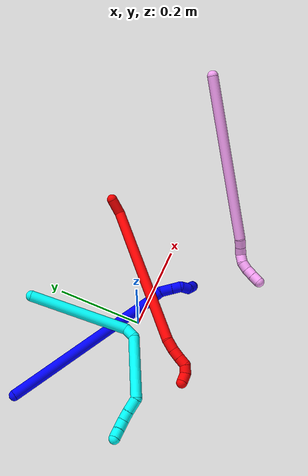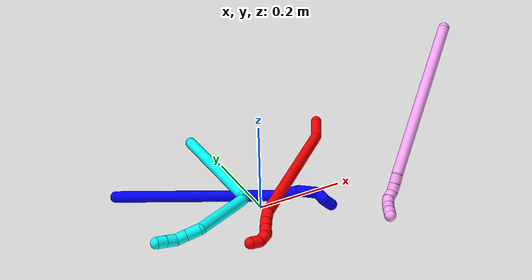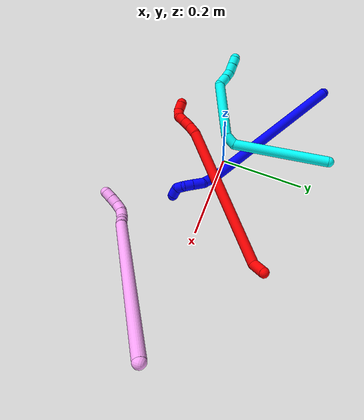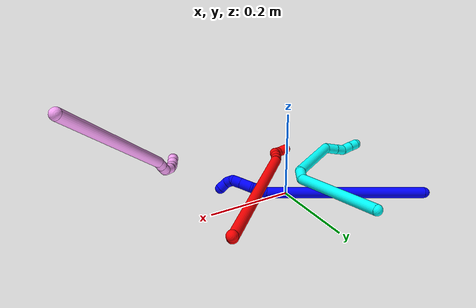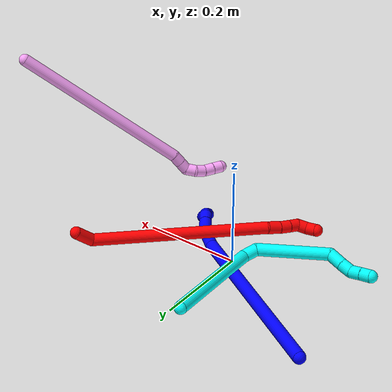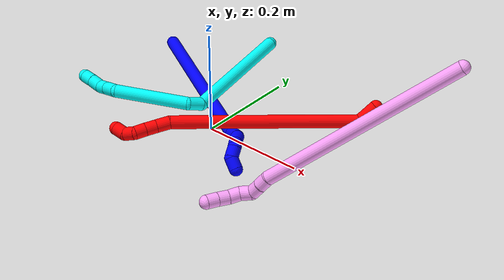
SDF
<sdf version="1.7">
 <world name="default">
  <plugin name="TubeGeneratorPlugin" filename="libtube_generator_plugin.so"/>
  <model name="photoneo_s_sensor">
   <static>1</static>
   <pose>0 0 2 1.57079 1.57079 3.14159</pose>
   <link name="link">
    <inertial><mass>0.1</mass></inertial>
    <sensor name="sensor" type="depth">
     <update_rate>30</update_rate>
     <camera>
      <horizontal_fov>1.22</horizontal_fov>
      <image><width>1920</width><height>1200</height><format>B8G8R8</format></image>
      <clip><near>0.1</near><far>4</far></clip>
      <depth_camera><output>points</output></depth_camera>
     </camera>
     <plugin name="camera_plugin" filename="libgazebo_ros_depth_camera.so">
      <baseline>0.2</baseline>
      <alwaysOn>1</alwaysOn>
      <updateRate>0.0</updateRate>
      <cameraName>camera_ir</cameraName>
      <imageTopicName>/camera/color/image_raw</imageTopicName>
      <cameraInfoTopicName>/camera/color/camera_info</cameraInfoTopicName>
      <depthImageTopicName>/camera/depth/image_raw</depthImageTopicName>
      <depthImageCameraInfoTopicName>/camera/depth/camera_info</depthImageCameraInfoTopicName>
      <pointCloudTopicName>/camera/depth/points</pointCloudTopicName>
      <frameName>fr_optical</frameName>
      <pointCloudCutoff>0.1</pointCloudCutoff>
      <pointCloudCutoffMax>2.0</pointCloudCutoffMax>
      <distortionK1>0</distortionK1>
      <distortionK2>0</distortionK2>
      <distortionK3>0</distortionK3>
      <distortionT1>0</distortionT1>
      <distortionT2>0</distortionT2>
      <CxPrime>0</CxPrime>
      <Cx>0</Cx>
      <Cy>0</Cy>
      <focalLength>0</focalLength>
      <hackBaseline>0</hackBaseline>
     </plugin>
    </sensor>
   </link>
  </model>
  <gravity>0 0 -9.8</gravity>
  <magnetic_field>6e-06 2.3e-05 -4.2e-05</magnetic_field>
  <atmosphere type="adiabatic"/>
  <physics name="default_physics" default="0" type="ode">
   <max_step_size>0.003</max_step_size>
   <real_time_factor>1</real_time_factor>
   <real_time_update_rate>1000</real_time_update_rate>
   <max_contacts>10000</max_contacts>
   <ode>
    <solver>
     <type>quick</type>
     <iters>100</iters>
     <sor>1.3</sor>
     <use_dynamic_moi_rescaling>0</use_dynamic_moi_rescaling>
    </solver>
    <constraints>
     <contact_max_correcting_vel>0</contact_max_correcting_vel>
     <contact_surface_layer>0.001</contact_surface_layer>
     <cfm>0</cfm>
     <erp>0.2</erp>
    </constraints>
   </ode>
  </physics>
  <scene><ambient>0.4 0.4 0.4 1</ambient><background>0.7 0.7 0.7 1</background><shadows>0</shadows></scene>
  <audio><device>default</device></audio>
  <spherical_coordinates>
   <surface_model>EARTH_WGS84</surface_model>
   <latitude_deg>0</latitude_deg>
   <longitude_deg>0</longitude_deg>
   <elevation>0</elevation>
   <heading_deg>0</heading_deg>
  </spherical_coordinates>
  <model name="bin">
   <static>1</static>
   <link name="bottom">
    <collision name="collision-bottom">
     <pose>0 0 -0.01 0 -0 0</pose>
     <geometry><box><size>0.8 0.6 0.02</size></box></geometry>
     <surface>
      <friction><ode><mu>100</mu><mu2>100</mu2></ode></friction>
      <contact><collide_bitmask>65535</collide_bitmask></contact>
     </surface>
    </collision>
   </link>
   <link name="west_wall">
    <collision name="collision-west_wall">
     <pose>-0.41 0 0.1 0 -0 0</pose>
     <geometry><box><size>0.02 0.6 0.2</size></box></geometry>
     <surface>
      <friction><ode><mu>100</mu><mu2>100</mu2></ode></friction>
      <contact><collide_bitmask>65535</collide_bitmask></contact>
     </surface>
    </collision>
   </link>
   <link name="east_wall">
    <collision name="collision-east_wall">
     <pose>0.41 0 0.1 0 -0 0</pose>
     <geometry><box><size>0.02 0.6 0.2</size></box></geometry>
     <surface>
      <friction><ode><mu>100</mu><mu2>100</mu2></ode></friction>
      <contact><collide_bitmask>65535</collide_bitmask></contact>
     </surface>
    </collision>
   </link>
   <link name="south_wall">
    <collision name="collision-south_wall">
     <pose>0 -0.31 0.1 0 -0 0</pose>
     <geometry><box><size>0.8 0.02 0.2</size></box></geometry>
     <surface>
      <friction><ode><mu>100</mu><mu2>100</mu2></ode></friction>
      <contact><collide_bitmask>65535</collide_bitmask></contact>
     </surface>
    </collision>
   </link>
   <link name="north_wall">
    <collision name="collision-north_wall">
     <pose>0 0.31 0.1 0 -0 0</pose>
     <geometry><box><size>0.8 0.02 0.2</size></box></geometry>
     <surface>
      <friction><ode><mu>100</mu><mu2>100</mu2></ode></friction>
      <contact><collide_bitmask>65535</collide_bitmask></contact>
     </surface>
    </collision>
   </link>
  </model>
  <model name="1">
   <static>0</static>
   <link name="1">
    <collision name="collision-cylinder-e_1_1_4">
     <pose>0.044503 -0.016224 -0.179588 3.0515 0.241964 2.43144</pose>
     <geometry><cylinder><radius>0.0125</radius><length>0.371461</length></cylinder></geometry>
     <surface>
      <friction><ode><mu>1.16</mu><mu2>1.16</mu2><slip1>0</slip1><slip2>0</slip2></ode></friction>
      <contact><ode><kp>1e+06</kp><kd>1</kd><max_vel>0</max_vel><min_depth>0.001</min_depth></ode></contact>
     </surface>
    </collision>
    <visual name="visual-cylinder-e_1_1_4">
     <pose>0.044503 -0.016224 -0.179588 3.0515 0.241964 2.43144</pose>
     <geometry><cylinder><radius>0.0125</radius><length>0.371461</length></cylinder></geometry>
     <material><ambient>0 0 1 1</ambient></material>
    </visual>
    <collision name="collision-cylinder-e_2_4_5">
     <pose>0.096438 -0.028406 -0.375429 -2.89778 0.417668 -2.09325</pose>
     <geometry><cylinder><radius>0.0125</radius><length>0.036644</length></cylinder></geometry>
     <surface>
      <friction><ode><mu>1.16</mu><mu2>1.16</mu2><slip1>0</slip1><slip2>0</slip2></ode></friction>
      <contact><ode><kp>1e+06</kp><kd>1</kd><max_vel>0</max_vel><min_depth>0.001</min_depth></ode></contact>
     </surface>
    </collision>
    <visual name="visual-cylinder-e_2_4_5">
     <pose>0.096438 -0.028406 -0.375429 -2.89778 0.417668 -2.09325</pose>
     <geometry><cylinder><radius>0.0125</radius><length>0.036644</length></cylinder></geometry>
     <material><ambient>0 0 1 1</ambient></material>
    </visual>
    <collision name="collision-cylinder-e_3_5_6">
     <pose>0.11304 -0.025903 -0.402023 2.99375 0.719911 2.75302</pose>
     <geometry><cylinder><radius>0.0125</radius><length>0.027816</length></cylinder></geometry>
     <surface>
      <friction><ode><mu>1.16</mu><mu2>1.16</mu2><slip1>0</slip1><slip2>0</slip2></ode></friction>
      <contact><ode><kp>1e+06</kp><kd>1</kd><max_vel>0</max_vel><min_depth>0.001</min_depth></ode></contact>
     </surface>
    </collision>
    <visual name="visual-cylinder-e_3_5_6">
     <pose>0.11304 -0.025903 -0.402023 2.99375 0.719911 2.75302</pose>
     <geometry><cylinder><radius>0.0125</radius><length>0.027816</length></cylinder></geometry>
     <material><ambient>0 0 1 1</ambient></material>
    </visual>
    <collision name="collision-cylinder-e_4_6_7">
     <pose>0.128947 -0.028731 -0.420301 2.98079 0.697555 2.70547</pose>
     <geometry><cylinder><radius>0.0125</radius><length>0.020978</length></cylinder></geometry>
     <surface>
      <friction><ode><mu>1.16</mu><mu2>1.16</mu2><slip1>0</slip1><slip2>0</slip2></ode></friction>
      <contact><ode><kp>1e+06</kp><kd>1</kd><max_vel>0</max_vel><min_depth>0.001</min_depth></ode></contact>
     </surface>
    </collision>
    <visual name="visual-cylinder-e_4_6_7">
     <pose>0.128947 -0.028731 -0.420301 2.98079 0.697555 2.70547</pose>
     <geometry><cylinder><radius>0.0125</radius><length>0.020978</length></cylinder></geometry>
     <material><ambient>0 0 1 1</ambient></material>
    </visual>
    <collision name="collision-cylinder-e_5_7_8">
     <pose>0.139732 -0.03799 -0.433742 2.17516 0.395759 0.730003</pose>
     <geometry><cylinder><radius>0.0125</radius><length>0.020998</length></cylinder></geometry>
     <surface>
      <friction><ode><mu>1.16</mu><mu2>1.16</mu2><slip1>0</slip1><slip2>0</slip2></ode></friction>
      <contact><ode><kp>1e+06</kp><kd>1</kd><max_vel>0</max_vel><min_depth>0.001</min_depth></ode></contact>
     </surface>
    </collision>
    <visual name="visual-cylinder-e_5_7_8">
     <pose>0.139732 -0.03799 -0.433742 2.17516 0.395759 0.730003</pose>
     <geometry><cylinder><radius>0.0125</radius><length>0.020998</length></cylinder></geometry>
     <material><ambient>0 0 1 1</ambient></material>
    </visual>
    <collision name="collision-cylinder-e_6_8_2">
     <pose>0.141047 -0.05273 -0.447544 2.45732 -0.249869 -0.678044</pose>
     <geometry><cylinder><radius>0.0125</radius><length>0.022102</length></cylinder></geometry>
     <surface>
      <friction><ode><mu>1.16</mu><mu2>1.16</mu2><slip1>0</slip1><slip2>0</slip2></ode></friction>
      <contact><ode><kp>1e+06</kp><kd>1</kd><max_vel>0</max_vel><min_depth>0.001</min_depth></ode></contact>
     </surface>
    </collision>
    <visual name="visual-cylinder-e_6_8_2">
     <pose>0.141047 -0.05273 -0.447544 2.45732 -0.249869 -0.678044</pose>
     <geometry><cylinder><radius>0.0125</radius><length>0.022102</length></cylinder></geometry>
     <material><ambient>0 0 1 1</ambient></material>
    </visual>
    <collision name="collision-sphere-2">
     <pose>0.138314 -0.059499 -0.455841 0 -0 0</pose>
     <geometry><sphere><radius>0.0125</radius></sphere></geometry>
     <surface>
      <friction><ode><mu>1.16</mu><mu2>1.16</mu2><slip1>0</slip1><slip2>0</slip2></ode></friction>
      <contact><ode><kp>1e+06</kp><kd>1</kd><max_vel>0</max_vel><min_depth>0.001</min_depth></ode></contact>
     </surface>
    </collision>
    <visual name="visual-sphere-2">
     <pose>0.138314 -0.059499 -0.455841 0 -0 0</pose>
     <geometry><sphere><radius>0.0125</radius></sphere></geometry>
     <material><ambient>0 0 1 1</ambient></material>
    </visual>
    <collision name="collision-sphere-4">
     <pose>0.089006 -0.032449 -0.359177 0 -0 0</pose>
     <geometry><sphere><radius>0.0125</radius></sphere></geometry>
     <surface>
      <friction><ode><mu>1.16</mu><mu2>1.16</mu2><slip1>0</slip1><slip2>0</slip2></ode></friction>
      <contact><ode><kp>1e+06</kp><kd>1</kd><max_vel>0</max_vel><min_depth>0.001</min_depth></ode></contact>
     </surface>
    </collision>
    <visual name="visual-sphere-4">
     <pose>0.089006 -0.032449 -0.359177 0 -0 0</pose>
     <geometry><sphere><radius>0.0125</radius></sphere></geometry>
     <material><ambient>0 0 1 1</ambient></material>
    </visual>
    <collision name="collision-sphere-1">
     <geometry><sphere><radius>0.0125</radius></sphere></geometry>
     <surface>
      <friction><ode><mu>1.16</mu><mu2>1.16</mu2><slip1>0</slip1><slip2>0</slip2></ode></friction>
      <contact><ode><kp>1e+06</kp><kd>1</kd><max_vel>0</max_vel><min_depth>0.001</min_depth></ode></contact>
     </surface>
    </collision>
    <visual name="visual-sphere-1">
     <geometry><sphere><radius>0.0125</radius></sphere></geometry>
     <material><ambient>0 0 1 1</ambient></material>
    </visual>
    <collision name="collision-sphere-8">
     <pose>0.14378 -0.045961 -0.439247 0 -0 0</pose>
     <geometry><sphere><radius>0.0125</radius></sphere></geometry>
     <surface>
      <friction><ode><mu>1.16</mu><mu2>1.16</mu2><slip1>0</slip1><slip2>0</slip2></ode></friction>
      <contact><ode><kp>1e+06</kp><kd>1</kd><max_vel>0</max_vel><min_depth>0.001</min_depth></ode></contact>
     </surface>
    </collision>
    <visual name="visual-sphere-8">
     <pose>0.14378 -0.045961 -0.439247 0 -0 0</pose>
     <geometry><sphere><radius>0.0125</radius></sphere></geometry>
     <material><ambient>0 0 1 1</ambient></material>
    </visual>
    <collision name="collision-sphere-5">
     <pose>0.10387 -0.024363 -0.39168 0 -0 0</pose>
     <geometry><sphere><radius>0.0125</radius></sphere></geometry>
     <surface>
      <friction><ode><mu>1.16</mu><mu2>1.16</mu2><slip1>0</slip1><slip2>0</slip2></ode></friction>
      <contact><ode><kp>1e+06</kp><kd>1</kd><max_vel>0</max_vel><min_depth>0.001</min_depth></ode></contact>
     </surface>
    </collision>
    <visual name="visual-sphere-5">
     <pose>0.10387 -0.024363 -0.39168 0 -0 0</pose>
     <geometry><sphere><radius>0.0125</radius></sphere></geometry>
     <material><ambient>0 0 1 1</ambient></material>
    </visual>
    <collision name="collision-sphere-6">
     <pose>0.122209 -0.027444 -0.412366 0 -0 0</pose>
     <geometry><sphere><radius>0.0125</radius></sphere></geometry>
     <surface>
      <friction><ode><mu>1.16</mu><mu2>1.16</mu2><slip1>0</slip1><slip2>0</slip2></ode></friction>
      <contact><ode><kp>1e+06</kp><kd>1</kd><max_vel>0</max_vel><min_depth>0.001</min_depth></ode></contact>
     </surface>
    </collision>
    <visual name="visual-sphere-6">
     <pose>0.122209 -0.027444 -0.412366 0 -0 0</pose>
     <geometry><sphere><radius>0.0125</radius></sphere></geometry>
     <material><ambient>0 0 1 1</ambient></material>
    </visual>
    <collision name="collision-sphere-7">
     <pose>0.135685 -0.030018 -0.428237 0 -0 0</pose>
     <geometry><sphere><radius>0.0125</radius></sphere></geometry>
     <surface>
      <friction><ode><mu>1.16</mu><mu2>1.16</mu2><slip1>0</slip1><slip2>0</slip2></ode></friction>
      <contact><ode><kp>1e+06</kp><kd>1</kd><max_vel>0</max_vel><min_depth>0.001</min_depth></ode></contact>
     </surface>
    </collision>
    <visual name="visual-sphere-7">
     <pose>0.135685 -0.030018 -0.428237 0 -0 0</pose>
     <geometry><sphere><radius>0.0125</radius></sphere></geometry>
     <material><ambient>0 0 1 1</ambient></material>
    </visual>
    <inertial>
     <pose>0.063932 -0.020708 -0.238934 0 -0 0</pose>
     <mass>0.5</mass>
     <inertia>
      <ixx>-0.000438</ixx>
      <ixy>0</ixy>
      <ixz>0</ixz>
      <iyy>0.006008</iyy>
      <iyz>0</iyz>
      <izz>-0.000692</izz>
     </inertia>
    </inertial>
   </link>
   <pose>-0.268916 0.180534 0.011496 1.55214 -0.456858 -1.8233</pose>
  </model>
  <model name="2">
   <static>0</static>
   <link name="2">
    <collision name="collision-cylinder-e_1_1_4">
     <pose>0.003649 -0.003506 -0.01925 2.96145 0.184367 1.59413</pose>
     <geometry><cylinder><radius>0.0125</radius><length>0.039808</length></cylinder></geometry>
     <surface>
      <friction><ode><mu>1.16</mu><mu2>1.16</mu2><slip1>0</slip1><slip2>0</slip2></ode></friction>
      <contact><ode><kp>1e+06</kp><kd>1</kd><max_vel>0</max_vel><min_depth>0.001</min_depth></ode></contact>
     </surface>
    </collision>
    <visual name="visual-cylinder-e_1_1_4">
     <pose>0.003649 -0.003506 -0.01925 2.96145 0.184367 1.59413</pose>
     <geometry><cylinder><radius>0.0125</radius><length>0.039808</length></cylinder></geometry>
     <material><ambient>1 0 0 1</ambient></material>
    </visual>
    <collision name="collision-cylinder-e_2_4_5">
     <pose>-0.083479 -0.051528 -0.181046 2.83889 -0.546187 -2.14433</pose>
     <geometry><cylinder><radius>0.0125</radius><length>0.349522</length></cylinder></geometry>
     <surface>
      <friction><ode><mu>1.16</mu><mu2>1.16</mu2><slip1>0</slip1><slip2>0</slip2></ode></friction>
      <contact><ode><kp>1e+06</kp><kd>1</kd><max_vel>0</max_vel><min_depth>0.001</min_depth></ode></contact>
     </surface>
    </collision>
    <visual name="visual-cylinder-e_2_4_5">
     <pose>-0.083479 -0.051528 -0.181046 2.83889 -0.546187 -2.14433</pose>
     <geometry><cylinder><radius>0.0125</radius><length>0.349522</length></cylinder></geometry>
     <material><ambient>1 0 0 1</ambient></material>
    </visual>
    <collision name="collision-cylinder-e_3_5_6">
     <pose>-0.177728 -0.100541 -0.335232 2.77302 -0.271378 -1.26433</pose>
     <geometry><cylinder><radius>0.0125</radius><length>0.025905</length></cylinder></geometry>
     <surface>
      <friction><ode><mu>1.16</mu><mu2>1.16</mu2><slip1>0</slip1><slip2>0</slip2></ode></friction>
      <contact><ode><kp>1e+06</kp><kd>1</kd><max_vel>0</max_vel><min_depth>0.001</min_depth></ode></contact>
     </surface>
    </collision>
    <visual name="visual-cylinder-e_3_5_6">
     <pose>-0.177728 -0.100541 -0.335232 2.77302 -0.271378 -1.26433</pose>
     <geometry><cylinder><radius>0.0125</radius><length>0.025905</length></cylinder></geometry>
     <material><ambient>1 0 0 1</ambient></material>
    </visual>
    <collision name="collision-cylinder-e_4_6_7">
     <pose>-0.184008 -0.110051 -0.356035 2.64088 -0.262638 -0.953514</pose>
     <geometry><cylinder><radius>0.0125</radius><length>0.021631</length></cylinder></geometry>
     <surface>
      <friction><ode><mu>1.16</mu><mu2>1.16</mu2><slip1>0</slip1><slip2>0</slip2></ode></friction>
      <contact><ode><kp>1e+06</kp><kd>1</kd><max_vel>0</max_vel><min_depth>0.001</min_depth></ode></contact>
     </surface>
    </collision>
    <visual name="visual-cylinder-e_4_6_7">
     <pose>-0.184008 -0.110051 -0.356035 2.64088 -0.262638 -0.953514</pose>
     <geometry><cylinder><radius>0.0125</radius><length>0.021631</length></cylinder></geometry>
     <material><ambient>1 0 0 1</ambient></material>
    </visual>
    <collision name="collision-cylinder-e_5_7_8">
     <pose>-0.189173 -0.120252 -0.373744 2.59611 -0.231511 -0.787925</pose>
     <geometry><cylinder><radius>0.0125</radius><length>0.020542</length></cylinder></geometry>
     <surface>
      <friction><ode><mu>1.16</mu><mu2>1.16</mu2><slip1>0</slip1><slip2>0</slip2></ode></friction>
      <contact><ode><kp>1e+06</kp><kd>1</kd><max_vel>0</max_vel><min_depth>0.001</min_depth></ode></contact>
     </surface>
    </collision>
    <visual name="visual-cylinder-e_5_7_8">
     <pose>-0.189173 -0.120252 -0.373744 2.59611 -0.231511 -0.787925</pose>
     <geometry><cylinder><radius>0.0125</radius><length>0.020542</length></cylinder></geometry>
     <material><ambient>1 0 0 1</ambient></material>
    </visual>
    <collision name="collision-cylinder-e_6_8_9">
     <pose>-0.195437 -0.124203 -0.391449 -3.00753 -0.400008 2.50201</pose>
     <geometry><cylinder><radius>0.0125</radius><length>0.020069</length></cylinder></geometry>
     <surface>
      <friction><ode><mu>1.16</mu><mu2>1.16</mu2><slip1>0</slip1><slip2>0</slip2></ode></friction>
      <contact><ode><kp>1e+06</kp><kd>1</kd><max_vel>0</max_vel><min_depth>0.001</min_depth></ode></contact>
     </surface>
    </collision>
    <visual name="visual-cylinder-e_6_8_9">
     <pose>-0.195437 -0.124203 -0.391449 -3.00753 -0.400008 2.50201</pose>
     <geometry><cylinder><radius>0.0125</radius><length>0.020069</length></cylinder></geometry>
     <material><ambient>1 0 0 1</ambient></material>
    </visual>
    <collision name="collision-cylinder-e_7_9_2">
     <pose>-0.207997 -0.119 -0.406625 -2.55855 -0.876241 2.00225</pose>
     <geometry><cylinder><radius>0.0125</radius><length>0.022523</length></cylinder></geometry>
     <surface>
      <friction><ode><mu>1.16</mu><mu2>1.16</mu2><slip1>0</slip1><slip2>0</slip2></ode></friction>
      <contact><ode><kp>1e+06</kp><kd>1</kd><max_vel>0</max_vel><min_depth>0.001</min_depth></ode></contact>
     </surface>
    </collision>
    <visual name="visual-cylinder-e_7_9_2">
     <pose>-0.207997 -0.119 -0.406625 -2.55855 -0.876241 2.00225</pose>
     <geometry><cylinder><radius>0.0125</radius><length>0.022523</length></cylinder></geometry>
     <material><ambient>1 0 0 1</ambient></material>
    </visual>
    <collision name="collision-sphere-2">
     <pose>-0.21665 -0.115031 -0.412642 0 -0 0</pose>
     <geometry><sphere><radius>0.0125</radius></sphere></geometry>
     <surface>
      <friction><ode><mu>1.16</mu><mu2>1.16</mu2><slip1>0</slip1><slip2>0</slip2></ode></friction>
      <contact><ode><kp>1e+06</kp><kd>1</kd><max_vel>0</max_vel><min_depth>0.001</min_depth></ode></contact>
     </surface>
    </collision>
    <visual name="visual-sphere-2">
     <pose>-0.21665 -0.115031 -0.412642 0 -0 0</pose>
     <geometry><sphere><radius>0.0125</radius></sphere></geometry>
     <material><ambient>1 0 0 1</ambient></material>
    </visual>
    <collision name="collision-sphere-9">
     <pose>-0.199344 -0.122968 -0.400608 0 -0 0</pose>
     <geometry><sphere><radius>0.0125</radius></sphere></geometry>
     <surface>
      <friction><ode><mu>1.16</mu><mu2>1.16</mu2><slip1>0</slip1><slip2>0</slip2></ode></friction>
      <contact><ode><kp>1e+06</kp><kd>1</kd><max_vel>0</max_vel><min_depth>0.001</min_depth></ode></contact>
     </surface>
    </collision>
    <visual name="visual-sphere-9">
     <pose>-0.199344 -0.122968 -0.400608 0 -0 0</pose>
     <geometry><sphere><radius>0.0125</radius></sphere></geometry>
     <material><ambient>1 0 0 1</ambient></material>
    </visual>
    <collision name="collision-sphere-4">
     <pose>0.007298 -0.007011 -0.0385 0 -0 0</pose>
     <geometry><sphere><radius>0.0125</radius></sphere></geometry>
     <surface>
      <friction><ode><mu>1.16</mu><mu2>1.16</mu2><slip1>0</slip1><slip2>0</slip2></ode></friction>
      <contact><ode><kp>1e+06</kp><kd>1</kd><max_vel>0</max_vel><min_depth>0.001</min_depth></ode></contact>
     </surface>
    </collision>
    <visual name="visual-sphere-4">
     <pose>0.007298 -0.007011 -0.0385 0 -0 0</pose>
     <geometry><sphere><radius>0.0125</radius></sphere></geometry>
     <material><ambient>1 0 0 1</ambient></material>
    </visual>
    <collision name="collision-sphere-1">
     <geometry><sphere><radius>0.0125</radius></sphere></geometry>
     <surface>
      <friction><ode><mu>1.16</mu><mu2>1.16</mu2><slip1>0</slip1><slip2>0</slip2></ode></friction>
      <contact><ode><kp>1e+06</kp><kd>1</kd><max_vel>0</max_vel><min_depth>0.001</min_depth></ode></contact>
     </surface>
    </collision>
    <visual name="visual-sphere-1">
     <geometry><sphere><radius>0.0125</radius></sphere></geometry>
     <material><ambient>1 0 0 1</ambient></material>
    </visual>
    <collision name="collision-sphere-8">
     <pose>-0.191529 -0.125439 -0.38229 0 -0 0</pose>
     <geometry><sphere><radius>0.0125</radius></sphere></geometry>
     <surface>
      <friction><ode><mu>1.16</mu><mu2>1.16</mu2><slip1>0</slip1><slip2>0</slip2></ode></friction>
      <contact><ode><kp>1e+06</kp><kd>1</kd><max_vel>0</max_vel><min_depth>0.001</min_depth></ode></contact>
     </surface>
    </collision>
    <visual name="visual-sphere-8">
     <pose>-0.191529 -0.125439 -0.38229 0 -0 0</pose>
     <geometry><sphere><radius>0.0125</radius></sphere></geometry>
     <material><ambient>1 0 0 1</ambient></material>
    </visual>
    <collision name="collision-sphere-5">
     <pose>-0.174256 -0.096045 -0.323592 0 -0 0</pose>
     <geometry><sphere><radius>0.0125</radius></sphere></geometry>
     <surface>
      <friction><ode><mu>1.16</mu><mu2>1.16</mu2><slip1>0</slip1><slip2>0</slip2></ode></friction>
      <contact><ode><kp>1e+06</kp><kd>1</kd><max_vel>0</max_vel><min_depth>0.001</min_depth></ode></contact>
     </surface>
    </collision>
    <visual name="visual-sphere-5">
     <pose>-0.174256 -0.096045 -0.323592 0 -0 0</pose>
     <geometry><sphere><radius>0.0125</radius></sphere></geometry>
     <material><ambient>1 0 0 1</ambient></material>
    </visual>
    <collision name="collision-sphere-6">
     <pose>-0.1812 -0.105037 -0.346873 0 -0 0</pose>
     <geometry><sphere><radius>0.0125</radius></sphere></geometry>
     <surface>
      <friction><ode><mu>1.16</mu><mu2>1.16</mu2><slip1>0</slip1><slip2>0</slip2></ode></friction>
      <contact><ode><kp>1e+06</kp><kd>1</kd><max_vel>0</max_vel><min_depth>0.001</min_depth></ode></contact>
     </surface>
    </collision>
    <visual name="visual-sphere-6">
     <pose>-0.1812 -0.105037 -0.346873 0 -0 0</pose>
     <geometry><sphere><radius>0.0125</radius></sphere></geometry>
     <material><ambient>1 0 0 1</ambient></material>
    </visual>
    <collision name="collision-sphere-7">
     <pose>-0.186816 -0.115065 -0.365197 0 -0 0</pose>
     <geometry><sphere><radius>0.0125</radius></sphere></geometry>
     <surface>
      <friction><ode><mu>1.16</mu><mu2>1.16</mu2><slip1>0</slip1><slip2>0</slip2></ode></friction>
      <contact><ode><kp>1e+06</kp><kd>1</kd><max_vel>0</max_vel><min_depth>0.001</min_depth></ode></contact>
     </surface>
    </collision>
    <visual name="visual-sphere-7">
     <pose>-0.186816 -0.115065 -0.365197 0 -0 0</pose>
     <geometry><sphere><radius>0.0125</radius></sphere></geometry>
     <material><ambient>1 0 0 1</ambient></material>
    </visual>
    <inertial>
     <pose>-0.100219 -0.061556 -0.210246 0 -0 0</pose>
     <mass>0.5</mass>
     <inertia>
      <ixx>-0.004232</ixx>
      <ixy>0</ixy>
      <ixz>0</ixz>
      <iyy>-0.000253</iyy>
      <iyz>0</iyz>
      <izz>0.002738</izz>
     </inertia>
    </inertial>
   </link>
   <pose>0.247118 0.180217 0.063786 -0.563734 0.842757 0.035783</pose>
  </model>
  <model name="3">
   <static>0</static>
   <link name="3">
    <collision name="collision-cylinder-e_1_1_4">
     <pose>-0.044516 -0.086026 -0.06326 2.20486 -0.394984 -0.753283</pose>
     <geometry><cylinder><radius>0.0125</radius><length>0.231377</length></cylinder></geometry>
     <surface>
      <friction><ode><mu>1.16</mu><mu2>1.16</mu2><slip1>0</slip1><slip2>0</slip2></ode></friction>
      <contact><ode><kp>1e+06</kp><kd>1</kd><max_vel>0</max_vel><min_depth>0.001</min_depth></ode></contact>
     </surface>
    </collision>
    <visual name="visual-cylinder-e_1_1_4">
     <pose>-0.044516 -0.086026 -0.06326 2.20486 -0.394984 -0.753283</pose>
     <geometry><cylinder><radius>0.0125</radius><length>0.231377</length></cylinder></geometry>
     <material><ambient>0.003922 1 0.996078 1</ambient></material>
    </visual>
    <collision name="collision-cylinder-e_2_4_5">
     <pose>-0.098124 -0.183145 -0.12557 1.48548 -0.684712 -0.632463</pose>
     <geometry><cylinder><radius>0.0125</radius><length>0.028749</length></cylinder></geometry>
     <surface>
      <friction><ode><mu>1.16</mu><mu2>1.16</mu2><slip1>0</slip1><slip2>0</slip2></ode></friction>
      <contact><ode><kp>1e+06</kp><kd>1</kd><max_vel>0</max_vel><min_depth>0.001</min_depth></ode></contact>
     </surface>
    </collision>
    <visual name="visual-cylinder-e_2_4_5">
     <pose>-0.098124 -0.183145 -0.12557 1.48548 -0.684712 -0.632463</pose>
     <geometry><cylinder><radius>0.0125</radius><length>0.028749</length></cylinder></geometry>
     <material><ambient>0.003922 1 0.996078 1</ambient></material>
    </visual>
    <collision name="collision-cylinder-e_3_5_6">
     <pose>-0.17221 -0.211546 -0.101047 0.633264 -1.14799 -0.41756</pose>
     <geometry><cylinder><radius>0.0125</radius><length>0.142543</length></cylinder></geometry>
     <surface>
      <friction><ode><mu>1.16</mu><mu2>1.16</mu2><slip1>0</slip1><slip2>0</slip2></ode></friction>
      <contact><ode><kp>1e+06</kp><kd>1</kd><max_vel>0</max_vel><min_depth>0.001</min_depth></ode></contact>
     </surface>
    </collision>
    <visual name="visual-cylinder-e_3_5_6">
     <pose>-0.17221 -0.211546 -0.101047 0.633264 -1.14799 -0.41756</pose>
     <geometry><cylinder><radius>0.0125</radius><length>0.142543</length></cylinder></geometry>
     <material><ambient>0.003922 1 0.996078 1</ambient></material>
    </visual>
    <collision name="collision-cylinder-e_4_6_7">
     <pose>-0.249764 -0.221952 -0.071418 -0.850559 -0.939546 0.45202</pose>
     <geometry><cylinder><radius>0.0125</radius><length>0.031111</length></cylinder></geometry>
     <surface>
      <friction><ode><mu>1.16</mu><mu2>1.16</mu2><slip1>0</slip1><slip2>0</slip2></ode></friction>
      <contact><ode><kp>1e+06</kp><kd>1</kd><max_vel>0</max_vel><min_depth>0.001</min_depth></ode></contact>
     </surface>
    </collision>
    <visual name="visual-cylinder-e_4_6_7">
     <pose>-0.249764 -0.221952 -0.071418 -0.850559 -0.939546 0.45202</pose>
     <geometry><cylinder><radius>0.0125</radius><length>0.031111</length></cylinder></geometry>
     <material><ambient>0.003922 1 0.996078 1</ambient></material>
    </visual>
    <collision name="collision-cylinder-e_5_7_8">
     <pose>-0.271787 -0.210615 -0.061014 -0.795348 -0.9899 0.44592</pose>
     <geometry><cylinder><radius>0.0125</radius><length>0.022644</length></cylinder></geometry>
     <surface>
      <friction><ode><mu>1.16</mu><mu2>1.16</mu2><slip1>0</slip1><slip2>0</slip2></ode></friction>
      <contact><ode><kp>1e+06</kp><kd>1</kd><max_vel>0</max_vel><min_depth>0.001</min_depth></ode></contact>
     </surface>
    </collision>
    <visual name="visual-cylinder-e_5_7_8">
     <pose>-0.271787 -0.210615 -0.061014 -0.795348 -0.9899 0.44592</pose>
     <geometry><cylinder><radius>0.0125</radius><length>0.022644</length></cylinder></geometry>
     <material><ambient>0.003922 1 0.996078 1</ambient></material>
    </visual>
    <collision name="collision-cylinder-e_6_8_9">
     <pose>-0.289808 -0.205495 -0.048824 -0.086852 -0.827165 0.038138</pose>
     <geometry><cylinder><radius>0.0125</radius><length>0.023252</length></cylinder></geometry>
     <surface>
      <friction><ode><mu>1.16</mu><mu2>1.16</mu2><slip1>0</slip1><slip2>0</slip2></ode></friction>
      <contact><ode><kp>1e+06</kp><kd>1</kd><max_vel>0</max_vel><min_depth>0.001</min_depth></ode></contact>
     </surface>
    </collision>
    <visual name="visual-cylinder-e_6_8_9">
     <pose>-0.289808 -0.205495 -0.048824 -0.086852 -0.827165 0.038138</pose>
     <geometry><cylinder><radius>0.0125</radius><length>0.023252</length></cylinder></geometry>
     <material><ambient>0.003922 1 0.996078 1</ambient></material>
    </visual>
    <collision name="collision-cylinder-e_7_9_2">
     <pose>-0.306162 -0.204051 -0.034511 -0.11702 -0.87463 0.054756</pose>
     <geometry><cylinder><radius>0.0125</radius><length>0.020323</length></cylinder></geometry>
     <surface>
      <friction><ode><mu>1.16</mu><mu2>1.16</mu2><slip1>0</slip1><slip2>0</slip2></ode></friction>
      <contact><ode><kp>1e+06</kp><kd>1</kd><max_vel>0</max_vel><min_depth>0.001</min_depth></ode></contact>
     </surface>
    </collision>
    <visual name="visual-cylinder-e_7_9_2">
     <pose>-0.306162 -0.204051 -0.034511 -0.11702 -0.87463 0.054756</pose>
     <geometry><cylinder><radius>0.0125</radius><length>0.020323</length></cylinder></geometry>
     <material><ambient>0.003922 1 0.996078 1</ambient></material>
    </visual>
    <collision name="collision-sphere-2">
     <pose>-0.313959 -0.203291 -0.02804 0 -0 0</pose>
     <geometry><sphere><radius>0.0125</radius></sphere></geometry>
     <surface>
      <friction><ode><mu>1.16</mu><mu2>1.16</mu2><slip1>0</slip1><slip2>0</slip2></ode></friction>
      <contact><ode><kp>1e+06</kp><kd>1</kd><max_vel>0</max_vel><min_depth>0.001</min_depth></ode></contact>
     </surface>
    </collision>
    <visual name="visual-sphere-2">
     <pose>-0.313959 -0.203291 -0.02804 0 -0 0</pose>
     <geometry><sphere><radius>0.0125</radius></sphere></geometry>
     <material><ambient>0.003922 1 0.996078 1</ambient></material>
    </visual>
    <collision name="collision-sphere-9">
     <pose>-0.298365 -0.204812 -0.040983 0 -0 0</pose>
     <geometry><sphere><radius>0.0125</radius></sphere></geometry>
     <surface>
      <friction><ode><mu>1.16</mu><mu2>1.16</mu2><slip1>0</slip1><slip2>0</slip2></ode></friction>
      <contact><ode><kp>1e+06</kp><kd>1</kd><max_vel>0</max_vel><min_depth>0.001</min_depth></ode></contact>
     </surface>
    </collision>
    <visual name="visual-sphere-9">
     <pose>-0.298365 -0.204812 -0.040983 0 -0 0</pose>
     <geometry><sphere><radius>0.0125</radius></sphere></geometry>
     <material><ambient>0.003922 1 0.996078 1</ambient></material>
    </visual>
    <collision name="collision-sphere-4">
     <pose>-0.089032 -0.172051 -0.126519 0 -0 0</pose>
     <geometry><sphere><radius>0.0125</radius></sphere></geometry>
     <surface>
      <friction><ode><mu>1.16</mu><mu2>1.16</mu2><slip1>0</slip1><slip2>0</slip2></ode></friction>
      <contact><ode><kp>1e+06</kp><kd>1</kd><max_vel>0</max_vel><min_depth>0.001</min_depth></ode></contact>
     </surface>
    </collision>
    <visual name="visual-sphere-4">
     <pose>-0.089032 -0.172051 -0.126519 0 -0 0</pose>
     <geometry><sphere><radius>0.0125</radius></sphere></geometry>
     <material><ambient>0.003922 1 0.996078 1</ambient></material>
    </visual>
    <collision name="collision-sphere-1">
     <geometry><sphere><radius>0.0125</radius></sphere></geometry>
     <surface>
      <friction><ode><mu>1.16</mu><mu2>1.16</mu2><slip1>0</slip1><slip2>0</slip2></ode></friction>
      <contact><ode><kp>1e+06</kp><kd>1</kd><max_vel>0</max_vel><min_depth>0.001</min_depth></ode></contact>
     </surface>
    </collision>
    <visual name="visual-sphere-1">
     <geometry><sphere><radius>0.0125</radius></sphere></geometry>
     <material><ambient>0.003922 1 0.996078 1</ambient></material>
    </visual>
    <collision name="collision-sphere-8">
     <pose>-0.281252 -0.206178 -0.056664 0 -0 0</pose>
     <geometry><sphere><radius>0.0125</radius></sphere></geometry>
     <surface>
      <friction><ode><mu>1.16</mu><mu2>1.16</mu2><slip1>0</slip1><slip2>0</slip2></ode></friction>
      <contact><ode><kp>1e+06</kp><kd>1</kd><max_vel>0</max_vel><min_depth>0.001</min_depth></ode></contact>
     </surface>
    </collision>
    <visual name="visual-sphere-8">
     <pose>-0.281252 -0.206178 -0.056664 0 -0 0</pose>
     <geometry><sphere><radius>0.0125</radius></sphere></geometry>
     <material><ambient>0.003922 1 0.996078 1</ambient></material>
    </visual>
    <collision name="collision-sphere-5">
     <pose>-0.107215 -0.194239 -0.124622 0 -0 0</pose>
     <geometry><sphere><radius>0.0125</radius></sphere></geometry>
     <surface>
      <friction><ode><mu>1.16</mu><mu2>1.16</mu2><slip1>0</slip1><slip2>0</slip2></ode></friction>
      <contact><ode><kp>1e+06</kp><kd>1</kd><max_vel>0</max_vel><min_depth>0.001</min_depth></ode></contact>
     </surface>
    </collision>
    <visual name="visual-sphere-5">
     <pose>-0.107215 -0.194239 -0.124622 0 -0 0</pose>
     <geometry><sphere><radius>0.0125</radius></sphere></geometry>
     <material><ambient>0.003922 1 0.996078 1</ambient></material>
    </visual>
    <collision name="collision-sphere-6">
     <pose>-0.237206 -0.228852 -0.077473 0 -0 0</pose>
     <geometry><sphere><radius>0.0125</radius></sphere></geometry>
     <surface>
      <friction><ode><mu>1.16</mu><mu2>1.16</mu2><slip1>0</slip1><slip2>0</slip2></ode></friction>
      <contact><ode><kp>1e+06</kp><kd>1</kd><max_vel>0</max_vel><min_depth>0.001</min_depth></ode></contact>
     </surface>
    </collision>
    <visual name="visual-sphere-6">
     <pose>-0.237206 -0.228852 -0.077473 0 -0 0</pose>
     <geometry><sphere><radius>0.0125</radius></sphere></geometry>
     <material><ambient>0.003922 1 0.996078 1</ambient></material>
    </visual>
    <collision name="collision-sphere-7">
     <pose>-0.262322 -0.215051 -0.065364 0 -0 0</pose>
     <geometry><sphere><radius>0.0125</radius></sphere></geometry>
     <surface>
      <friction><ode><mu>1.16</mu><mu2>1.16</mu2><slip1>0</slip1><slip2>0</slip2></ode></friction>
      <contact><ode><kp>1e+06</kp><kd>1</kd><max_vel>0</max_vel><min_depth>0.001</min_depth></ode></contact>
     </surface>
    </collision>
    <visual name="visual-sphere-7">
     <pose>-0.262322 -0.215051 -0.065364 0 -0 0</pose>
     <geometry><sphere><radius>0.0125</radius></sphere></geometry>
     <material><ambient>0.003922 1 0.996078 1</ambient></material>
    </visual>
    <inertial>
     <pose>-0.129108 -0.151847 -0.076181 0 -0 0</pose>
     <mass>0.5</mass>
     <inertia>
      <ixx>7.8e-05</ixx>
      <ixy>0</ixy>
      <ixz>0</ixz>
      <iyy>-0.000698</iyy>
      <iyz>0</iyz>
      <izz>0.001467</izz>
     </inertia>
    </inertial>
   </link>
   <pose>-0.057798 0.242526 0.059354 -0.674035 -0.373962 0.478257</pose>
  </model>
  <model name="4">
   <static>0</static>
   <link name="4">
    <collision name="collision-cylinder-e_1_1_4">
     <pose>0.110358 -0.105116 0.111644 0.755293 0.623816 0.254428</pose>
     <geometry><cylinder><radius>0.0125</radius><length>0.37785</length></cylinder></geometry>
     <surface>
      <friction><ode><mu>1.16</mu><mu2>1.16</mu2><slip1>0</slip1><slip2>0</slip2></ode></friction>
      <contact><ode><kp>1e+06</kp><kd>1</kd><max_vel>0</max_vel><min_depth>0.001</min_depth></ode></contact>
     </surface>
    </collision>
    <visual name="visual-cylinder-e_1_1_4">
     <pose>0.110358 -0.105116 0.111644 0.755293 0.623816 0.254428</pose>
     <geometry><cylinder><radius>0.0125</radius><length>0.37785</length></cylinder></geometry>
     <material><ambient>1 0.65098 0.996078 1</ambient></material>
    </visual>
    <collision name="collision-cylinder-e_2_4_5">
     <pose>0.228589 -0.214181 0.228646 0.635037 0.868925 0.302666</pose>
     <geometry><cylinder><radius>0.0125</radius><length>0.02062</length></cylinder></geometry>
     <surface>
      <friction><ode><mu>1.16</mu><mu2>1.16</mu2><slip1>0</slip1><slip2>0</slip2></ode></friction>
      <contact><ode><kp>1e+06</kp><kd>1</kd><max_vel>0</max_vel><min_depth>0.001</min_depth></ode></contact>
     </surface>
    </collision>
    <visual name="visual-cylinder-e_2_4_5">
     <pose>0.228589 -0.214181 0.228646 0.635037 0.868925 0.302666</pose>
     <geometry><cylinder><radius>0.0125</radius><length>0.02062</length></cylinder></geometry>
     <material><ambient>1 0.65098 0.996078 1</ambient></material>
    </visual>
    <collision name="collision-cylinder-e_3_5_6">
     <pose>0.244273 -0.222322 0.238771 0.721462 0.888391 0.355282</pose>
     <geometry><cylinder><radius>0.0125</radius><length>0.020129</length></cylinder></geometry>
     <surface>
      <friction><ode><mu>1.16</mu><mu2>1.16</mu2><slip1>0</slip1><slip2>0</slip2></ode></friction>
      <contact><ode><kp>1e+06</kp><kd>1</kd><max_vel>0</max_vel><min_depth>0.001</min_depth></ode></contact>
     </surface>
    </collision>
    <visual name="visual-cylinder-e_3_5_6">
     <pose>0.244273 -0.222322 0.238771 0.721462 0.888391 0.355282</pose>
     <geometry><cylinder><radius>0.0125</radius><length>0.020129</length></cylinder></geometry>
     <material><ambient>1 0.65098 0.996078 1</ambient></material>
    </visual>
    <collision name="collision-cylinder-e_4_6_7">
     <pose>0.25427 -0.235056 0.249184 0.986629 0.210371 0.113404</pose>
     <geometry><cylinder><radius>0.0125</radius><length>0.02094</length></cylinder></geometry>
     <surface>
      <friction><ode><mu>1.16</mu><mu2>1.16</mu2><slip1>0</slip1><slip2>0</slip2></ode></friction>
      <contact><ode><kp>1e+06</kp><kd>1</kd><max_vel>0</max_vel><min_depth>0.001</min_depth></ode></contact>
     </surface>
    </collision>
    <visual name="visual-cylinder-e_4_6_7">
     <pose>0.25427 -0.235056 0.249184 0.986629 0.210371 0.113404</pose>
     <geometry><cylinder><radius>0.0125</radius><length>0.02094</length></cylinder></geometry>
     <material><ambient>1 0.65098 0.996078 1</ambient></material>
    </visual>
    <collision name="collision-cylinder-e_5_7_8">
     <pose>0.257412 -0.249315 0.263048 0.607987 0.095109 0.029858</pose>
     <geometry><cylinder><radius>0.0125</radius><length>0.020113</length></cylinder></geometry>
     <surface>
      <friction><ode><mu>1.16</mu><mu2>1.16</mu2><slip1>0</slip1><slip2>0</slip2></ode></friction>
      <contact><ode><kp>1e+06</kp><kd>1</kd><max_vel>0</max_vel><min_depth>0.001</min_depth></ode></contact>
     </surface>
    </collision>
    <visual name="visual-cylinder-e_5_7_8">
     <pose>0.257412 -0.249315 0.263048 0.607987 0.095109 0.029858</pose>
     <geometry><cylinder><radius>0.0125</radius><length>0.020113</length></cylinder></geometry>
     <material><ambient>1 0.65098 0.996078 1</ambient></material>
    </visual>
    <collision name="collision-cylinder-e_6_8_9">
     <pose>0.256986 -0.260579 0.279666 0.583429 -0.136325 -0.040994</pose>
     <geometry><cylinder><radius>0.0125</radius><length>0.02032</length></cylinder></geometry>
     <surface>
      <friction><ode><mu>1.16</mu><mu2>1.16</mu2><slip1>0</slip1><slip2>0</slip2></ode></friction>
      <contact><ode><kp>1e+06</kp><kd>1</kd><max_vel>0</max_vel><min_depth>0.001</min_depth></ode></contact>
     </surface>
    </collision>
    <visual name="visual-cylinder-e_6_8_9">
     <pose>0.256986 -0.260579 0.279666 0.583429 -0.136325 -0.040994</pose>
     <geometry><cylinder><radius>0.0125</radius><length>0.02032</length></cylinder></geometry>
     <material><ambient>1 0.65098 0.996078 1</ambient></material>
    </visual>
    <collision name="collision-cylinder-e_7_9_2">
     <pose>0.254307 -0.271203 0.296598 0.536972 -0.129947 -0.035799</pose>
     <geometry><cylinder><radius>0.0125</radius><length>0.020028</length></cylinder></geometry>
     <surface>
      <friction><ode><mu>1.16</mu><mu2>1.16</mu2><slip1>0</slip1><slip2>0</slip2></ode></friction>
      <contact><ode><kp>1e+06</kp><kd>1</kd><max_vel>0</max_vel><min_depth>0.001</min_depth></ode></contact>
     </surface>
    </collision>
    <visual name="visual-cylinder-e_7_9_2">
     <pose>0.254307 -0.271203 0.296598 0.536972 -0.129947 -0.035799</pose>
     <geometry><cylinder><radius>0.0125</radius><length>0.020028</length></cylinder></geometry>
     <material><ambient>1 0.65098 0.996078 1</ambient></material>
    </visual>
    <collision name="collision-sphere-2">
     <pose>0.25301 -0.276283 0.305131 0 -0 0</pose>
     <geometry><sphere><radius>0.0125</radius></sphere></geometry>
     <surface>
      <friction><ode><mu>1.16</mu><mu2>1.16</mu2><slip1>0</slip1><slip2>0</slip2></ode></friction>
      <contact><ode><kp>1e+06</kp><kd>1</kd><max_vel>0</max_vel><min_depth>0.001</min_depth></ode></contact>
     </surface>
    </collision>
    <visual name="visual-sphere-2">
     <pose>0.25301 -0.276283 0.305131 0 -0 0</pose>
     <geometry><sphere><radius>0.0125</radius></sphere></geometry>
     <material><ambient>1 0.65098 0.996078 1</ambient></material>
    </visual>
    <collision name="collision-sphere-9">
     <pose>0.255605 -0.266124 0.288066 0 -0 0</pose>
     <geometry><sphere><radius>0.0125</radius></sphere></geometry>
     <surface>
      <friction><ode><mu>1.16</mu><mu2>1.16</mu2><slip1>0</slip1><slip2>0</slip2></ode></friction>
      <contact><ode><kp>1e+06</kp><kd>1</kd><max_vel>0</max_vel><min_depth>0.001</min_depth></ode></contact>
     </surface>
    </collision>
    <visual name="visual-sphere-9">
     <pose>0.255605 -0.266124 0.288066 0 -0 0</pose>
     <geometry><sphere><radius>0.0125</radius></sphere></geometry>
     <material><ambient>1 0.65098 0.996078 1</ambient></material>
    </visual>
    <collision name="collision-sphere-4">
     <pose>0.220716 -0.210232 0.223287 0 -0 0</pose>
     <geometry><sphere><radius>0.0125</radius></sphere></geometry>
     <surface>
      <friction><ode><mu>1.16</mu><mu2>1.16</mu2><slip1>0</slip1><slip2>0</slip2></ode></friction>
      <contact><ode><kp>1e+06</kp><kd>1</kd><max_vel>0</max_vel><min_depth>0.001</min_depth></ode></contact>
     </surface>
    </collision>
    <visual name="visual-sphere-4">
     <pose>0.220716 -0.210232 0.223287 0 -0 0</pose>
     <geometry><sphere><radius>0.0125</radius></sphere></geometry>
     <material><ambient>1 0.65098 0.996078 1</ambient></material>
    </visual>
    <collision name="collision-sphere-1">
     <geometry><sphere><radius>0.0125</radius></sphere></geometry>
     <surface>
      <friction><ode><mu>1.16</mu><mu2>1.16</mu2><slip1>0</slip1><slip2>0</slip2></ode></friction>
      <contact><ode><kp>1e+06</kp><kd>1</kd><max_vel>0</max_vel><min_depth>0.001</min_depth></ode></contact>
     </surface>
    </collision>
    <visual name="visual-sphere-1">
     <geometry><sphere><radius>0.0125</radius></sphere></geometry>
     <material><ambient>1 0.65098 0.996078 1</ambient></material>
    </visual>
    <collision name="collision-sphere-8">
     <pose>0.258367 -0.255034 0.271265 0 -0 0</pose>
     <geometry><sphere><radius>0.0125</radius></sphere></geometry>
     <surface>
      <friction><ode><mu>1.16</mu><mu2>1.16</mu2><slip1>0</slip1><slip2>0</slip2></ode></friction>
      <contact><ode><kp>1e+06</kp><kd>1</kd><max_vel>0</max_vel><min_depth>0.001</min_depth></ode></contact>
     </surface>
    </collision>
    <visual name="visual-sphere-8">
     <pose>0.258367 -0.255034 0.271265 0 -0 0</pose>
     <geometry><sphere><radius>0.0125</radius></sphere></geometry>
     <material><ambient>1 0.65098 0.996078 1</ambient></material>
    </visual>
    <collision name="collision-sphere-5">
     <pose>0.236462 -0.21813 0.234005 0 -0 0</pose>
     <geometry><sphere><radius>0.0125</radius></sphere></geometry>
     <surface>
      <friction><ode><mu>1.16</mu><mu2>1.16</mu2><slip1>0</slip1><slip2>0</slip2></ode></friction>
      <contact><ode><kp>1e+06</kp><kd>1</kd><max_vel>0</max_vel><min_depth>0.001</min_depth></ode></contact>
     </surface>
    </collision>
    <visual name="visual-sphere-5">
     <pose>0.236462 -0.21813 0.234005 0 -0 0</pose>
     <geometry><sphere><radius>0.0125</radius></sphere></geometry>
     <material><ambient>1 0.65098 0.996078 1</ambient></material>
    </visual>
    <collision name="collision-sphere-6">
     <pose>0.252084 -0.226514 0.243537 0 -0 0</pose>
     <geometry><sphere><radius>0.0125</radius></sphere></geometry>
     <surface>
      <friction><ode><mu>1.16</mu><mu2>1.16</mu2><slip1>0</slip1><slip2>0</slip2></ode></friction>
      <contact><ode><kp>1e+06</kp><kd>1</kd><max_vel>0</max_vel><min_depth>0.001</min_depth></ode></contact>
     </surface>
    </collision>
    <visual name="visual-sphere-6">
     <pose>0.252084 -0.226514 0.243537 0 -0 0</pose>
     <geometry><sphere><radius>0.0125</radius></sphere></geometry>
     <material><ambient>1 0.65098 0.996078 1</ambient></material>
    </visual>
    <collision name="collision-sphere-7">
     <pose>0.256456 -0.243597 0.254831 0 -0 0</pose>
     <geometry><sphere><radius>0.0125</radius></sphere></geometry>
     <surface>
      <friction><ode><mu>1.16</mu><mu2>1.16</mu2><slip1>0</slip1><slip2>0</slip2></ode></friction>
      <contact><ode><kp>1e+06</kp><kd>1</kd><max_vel>0</max_vel><min_depth>0.001</min_depth></ode></contact>
     </surface>
    </collision>
    <visual name="visual-sphere-7">
     <pose>0.256456 -0.243597 0.254831 0 -0 0</pose>
     <geometry><sphere><radius>0.0125</radius></sphere></geometry>
     <material><ambient>1 0.65098 0.996078 1</ambient></material>
    </visual>
    <inertial>
     <pose>0.144292 -0.138546 0.147674 0 -0 0</pose>
     <mass>0.5</mass>
     <inertia>
      <ixx>0.004492</ixx>
      <ixy>0</ixy>
      <ixz>0</ixz>
      <iyy>0.00454</iyy>
      <iyz>0</iyz>
      <izz>-9.9e-05</izz>
     </inertia>
    </inertial>
   </link>
   <pose>0.501905 0.03591 0.310054 -2.48128 1.26248 2.28845</pose>
  </model>
 </world>
</sdf>
